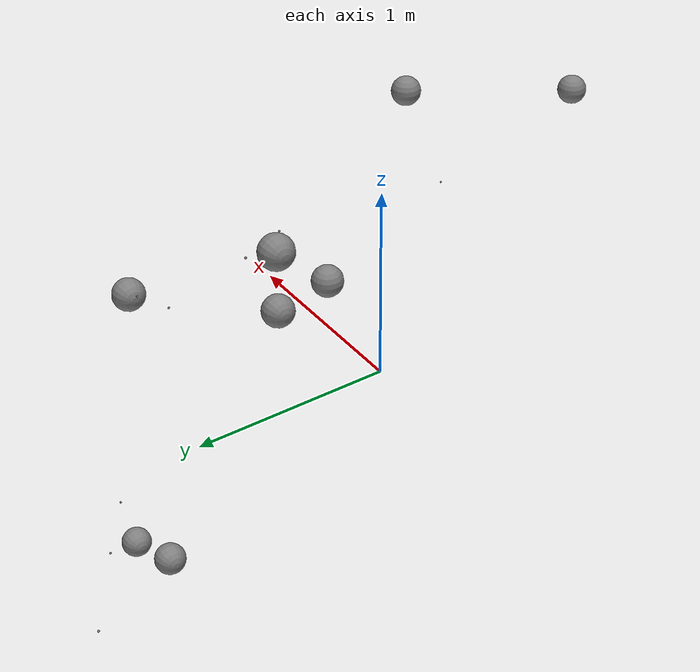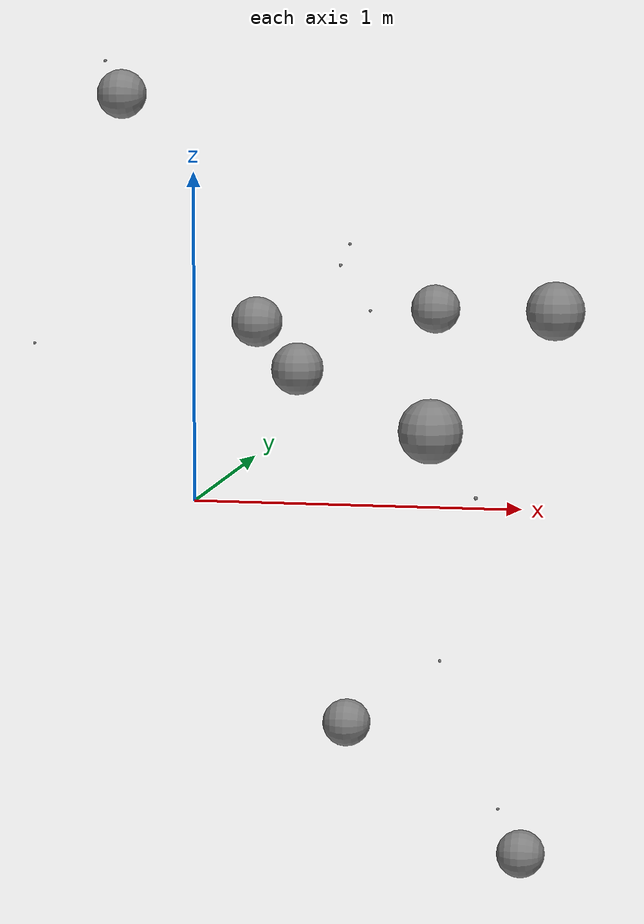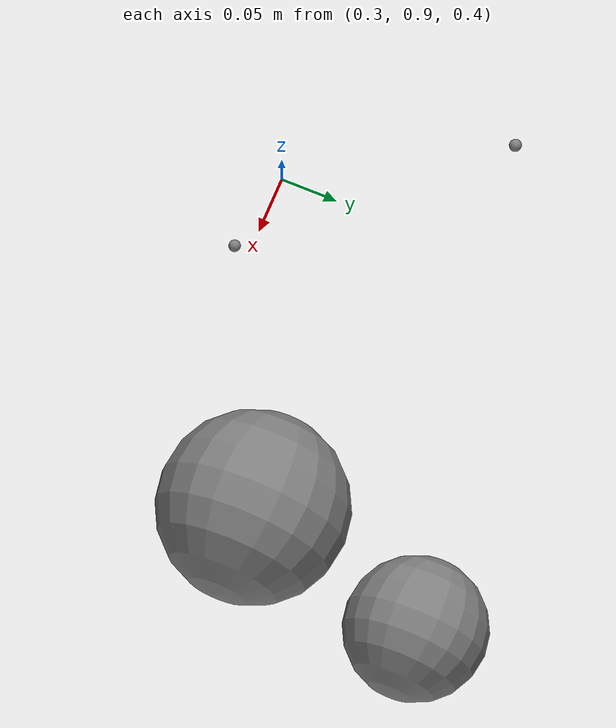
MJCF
<mujoco model="mocap-static-tree">
  <compiler angle="radian" fusestatic="false"/>
  <default><geom type="sphere" size="0.08" mass="1"/></default>
  <worldbody>
    <geom pos="1 -2 0.5"/>
    <site pos="-1 2 0.25"/>
    <body name="static" pos="0.5 0.75 -1" quat="0.5 0.5 0.5 0.5">
      <geom pos="0.2 -0.3 0.4"/>
      <site pos="0.4 -0.2 0.3"/>
      <body pos="0.3 0.1 -0.2"><geom/><site pos="0.1 0.2 0.3"/></body>
    </body>
    <body name="mocap-a" mocap="true" pos="-0.4 0.8 1.2" quat="0.5 0.5 0.5 0.5">
      <geom/><site pos="0.2 0.1 -0.1"/>
      <body pos="0.3 -0.5 0.7" quat="0 0 0 1">
        <geom pos="0.1 0.2 0.3"/><site/>
        <body pos="0.4 0.1 -0.2">
          <joint type="hinge" axis="0 0 1" pos="0.1 0.2 0" ref="0.15"/>
          <geom pos="0.2 0.1 0"/><site pos="-0.2 0.1 0.3"/>
        </body>
      </body>
    </body>
    <body name="mocap-b" mocap="true" pos="1.1 -0.8 0.4" quat="0 1 0 0">
      <geom pos="0.1 0.2 -0.3"/><site pos="-0.1 0.3 0.2"/>
    </body>
    <body name="slider" pos="0.3 0.1 0.4">
      <joint type="slide" axis="1 0 0" ref="0.2"/>
      <geom/><site pos="0.1 0.2 0.3"/>
    </body>
  </worldbody>
</mujoco>
